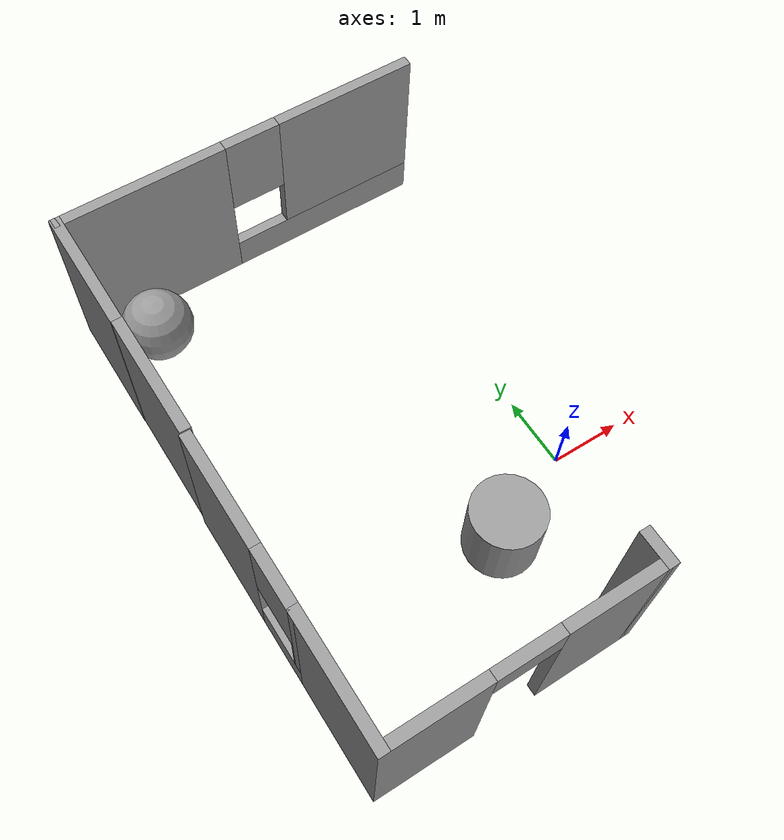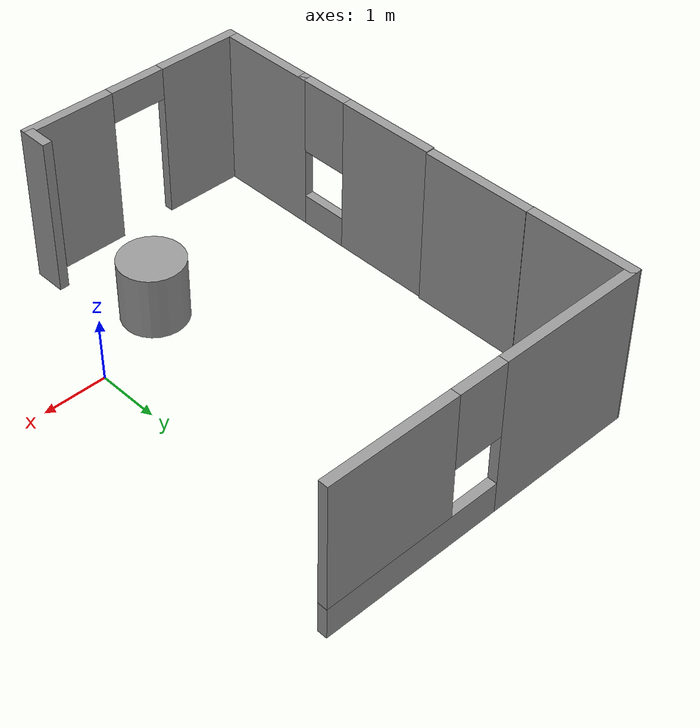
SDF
<sdf version="1.7">
 <model name="housing">
  <link name="Wall_28">
   <pose>-4.35 0.469647 0 0 0 -1.5708</pose>
   <visual name="Wall_28_Visual_0">
    <pose>-0.459531 0 1.25 0 -0 0</pose>
    <geometry><box><size>1.58094 0.15 2.5</size></box></geometry>
    <material>
     <script><uri>file://media/materials/scripts/gazebo.material</uri><name>Gazebo/Grey</name></script>
     <ambient>1 1 1 1</ambient>
     <shader type="pixel"/>
    </material>
    <meta><layer>0</layer></meta>
   </visual>
   <visual name="Wall_28_Visual_1">
    <pose>0.790469 0 0.25 0 -0 0</pose>
    <geometry><box><size>0.919061 0.15 0.5</size></box></geometry>
    <material>
     <script><uri>file://media/materials/scripts/gazebo.material</uri><name>Gazebo/Grey</name></script>
     <ambient>1 1 1 1</ambient>
     <shader type="pixel"/>
    </material>
    <meta><layer>0</layer></meta>
   </visual>
   <visual name="Wall_28_Visual_2">
    <pose>1.19047 0 1.5 0 -0 0</pose>
    <geometry><box><size>0.119061 0.15 2</size></box></geometry>
    <material>
     <script><uri>file://media/materials/scripts/gazebo.material</uri><name>Gazebo/Grey</name></script>
     <ambient>1 1 1 1</ambient>
     <shader type="pixel"/>
    </material>
    <meta><layer>0</layer></meta>
   </visual>
   <visual name="Wall_28_Visual_3">
    <pose>0.730939 0 1.9 0 -0 0</pose>
    <geometry><box><size>0.8 0.15 1.2</size></box></geometry>
    <material>
     <script><uri>file://media/materials/scripts/gazebo.material</uri><name>Gazebo/Grey</name></script>
     <ambient>1 1 1 1</ambient>
     <shader type="pixel"/>
    </material>
    <meta><layer>0</layer></meta>
   </visual>
   <collision name="Wall_28_Collision_0">
    <pose>-0.459531 0 1.25 0 -0 0</pose>
    <geometry><box><size>1.58094 0.15 2.5</size></box></geometry>
    <surface>
     <friction>
      <ode><mu>1</mu><mu2>1</mu2><fdir1>0 0 0</fdir1><slip1>0</slip1><slip2>0</slip2></ode>
      <torsional>
       <coefficient>1</coefficient>
       <patch_radius>0</patch_radius>
       <surface_radius>0</surface_radius>
       <use_patch_radius>1</use_patch_radius>
       <ode><slip>0</slip></ode>
      </torsional>
     </friction>
     <bounce><restitution_coefficient>0</restitution_coefficient><threshold>1e+06</threshold></bounce>
     <contact>
      <collide_without_contact>0</collide_without_contact>
      <collide_without_contact_bitmask>1</collide_without_contact_bitmask>
      <collide_bitmask>1</collide_bitmask>
      <ode>
       <soft_cfm>0</soft_cfm>
       <soft_erp>0.2</soft_erp>
       <kp>1e+13</kp>
       <kd>1</kd>
       <max_vel>0.01</max_vel>
       <min_depth>0</min_depth>
      </ode>
      <bullet>
       <split_impulse>1</split_impulse>
       <split_impulse_penetration_threshold>-0.01</split_impulse_penetration_threshold>
       <soft_cfm>0</soft_cfm>
       <soft_erp>0.2</soft_erp>
       <kp>1e+13</kp>
       <kd>1</kd>
      </bullet>
     </contact>
    </surface>
   </collision>
   <collision name="Wall_28_Collision_1">
    <pose>0.790469 0 0.25 0 -0 0</pose>
    <geometry><box><size>0.919061 0.15 0.5</size></box></geometry>
    <surface>
     <friction>
      <ode><mu>1</mu><mu2>1</mu2><fdir1>0 0 0</fdir1><slip1>0</slip1><slip2>0</slip2></ode>
      <torsional>
       <coefficient>1</coefficient>
       <patch_radius>0</patch_radius>
       <surface_radius>0</surface_radius>
       <use_patch_radius>1</use_patch_radius>
       <ode><slip>0</slip></ode>
      </torsional>
     </friction>
     <bounce><restitution_coefficient>0</restitution_coefficient><threshold>1e+06</threshold></bounce>
     <contact>
      <collide_without_contact>0</collide_without_contact>
      <collide_without_contact_bitmask>1</collide_without_contact_bitmask>
      <collide_bitmask>1</collide_bitmask>
      <ode>
       <soft_cfm>0</soft_cfm>
       <soft_erp>0.2</soft_erp>
       <kp>1e+13</kp>
       <kd>1</kd>
       <max_vel>0.01</max_vel>
       <min_depth>0</min_depth>
      </ode>
      <bullet>
       <split_impulse>1</split_impulse>
       <split_impulse_penetration_threshold>-0.01</split_impulse_penetration_threshold>
       <soft_cfm>0</soft_cfm>
       <soft_erp>0.2</soft_erp>
       <kp>1e+13</kp>
       <kd>1</kd>
      </bullet>
     </contact>
    </surface>
   </collision>
   <collision name="Wall_28_Collision_2">
    <pose>1.19047 0 1.5 0 -0 0</pose>
    <geometry><box><size>0.119061 0.15 2</size></box></geometry>
    <surface>
     <friction>
      <ode><mu>1</mu><mu2>1</mu2><fdir1>0 0 0</fdir1><slip1>0</slip1><slip2>0</slip2></ode>
      <torsional>
       <coefficient>1</coefficient>
       <patch_radius>0</patch_radius>
       <surface_radius>0</surface_radius>
       <use_patch_radius>1</use_patch_radius>
       <ode><slip>0</slip></ode>
      </torsional>
     </friction>
     <bounce><restitution_coefficient>0</restitution_coefficient><threshold>1e+06</threshold></bounce>
     <contact>
      <collide_without_contact>0</collide_without_contact>
      <collide_without_contact_bitmask>1</collide_without_contact_bitmask>
      <collide_bitmask>1</collide_bitmask>
      <ode>
       <soft_cfm>0</soft_cfm>
       <soft_erp>0.2</soft_erp>
       <kp>1e+13</kp>
       <kd>1</kd>
       <max_vel>0.01</max_vel>
       <min_depth>0</min_depth>
      </ode>
      <bullet>
       <split_impulse>1</split_impulse>
       <split_impulse_penetration_threshold>-0.01</split_impulse_penetration_threshold>
       <soft_cfm>0</soft_cfm>
       <soft_erp>0.2</soft_erp>
       <kp>1e+13</kp>
       <kd>1</kd>
      </bullet>
     </contact>
    </surface>
   </collision>
   <collision name="Wall_28_Collision_3">
    <pose>0.730939 0 1.9 0 -0 0</pose>
    <geometry><box><size>0.8 0.15 1.2</size></box></geometry>
    <surface>
     <friction>
      <ode><mu>1</mu><mu2>1</mu2><fdir1>0 0 0</fdir1><slip1>0</slip1><slip2>0</slip2></ode>
      <torsional>
       <coefficient>1</coefficient>
       <patch_radius>0</patch_radius>
       <surface_radius>0</surface_radius>
       <use_patch_radius>1</use_patch_radius>
       <ode><slip>0</slip></ode>
      </torsional>
     </friction>
     <bounce><restitution_coefficient>0</restitution_coefficient><threshold>1e+06</threshold></bounce>
     <contact>
      <collide_without_contact>0</collide_without_contact>
      <collide_without_contact_bitmask>1</collide_without_contact_bitmask>
      <collide_bitmask>1</collide_bitmask>
      <ode>
       <soft_cfm>0</soft_cfm>
       <soft_erp>0.2</soft_erp>
       <kp>1e+13</kp>
       <kd>1</kd>
       <max_vel>0.01</max_vel>
       <min_depth>0</min_depth>
      </ode>
      <bullet>
       <split_impulse>1</split_impulse>
       <split_impulse_penetration_threshold>-0.01</split_impulse_penetration_threshold>
       <soft_cfm>0</soft_cfm>
       <soft_erp>0.2</soft_erp>
       <kp>1e+13</kp>
       <kd>1</kd>
      </bullet>
     </contact>
    </surface>
   </collision>
  </link>
  <link name="Wall_51">
   <pose>-4.35 -1.50535 0 0 0 -1.5708</pose>
   <visual name="Wall_51_Visual">
    <pose>0 0 1.25 0 -0 0</pose>
    <geometry><box><size>1.75 0.15 2.5</size></box></geometry>
    <material>
     <script><uri>file://media/materials/scripts/gazebo.material</uri><name>Gazebo/Grey</name></script>
     <ambient>1 1 1 1</ambient>
     <shader type="pixel"/>
    </material>
    <meta><layer>0</layer></meta>
   </visual>
   <collision name="Wall_51_Collision">
    <pose>0 0 1.25 0 -0 0</pose>
    <geometry><box><size>1.75 0.15 2.5</size></box></geometry>
    <surface>
     <friction>
      <ode><mu>1</mu><mu2>1</mu2><fdir1>0 0 0</fdir1><slip1>0</slip1><slip2>0</slip2></ode>
      <torsional>
       <coefficient>1</coefficient>
       <patch_radius>0</patch_radius>
       <surface_radius>0</surface_radius>
       <use_patch_radius>1</use_patch_radius>
       <ode><slip>0</slip></ode>
      </torsional>
     </friction>
     <bounce><restitution_coefficient>0</restitution_coefficient><threshold>1e+06</threshold></bounce>
     <contact>
      <collide_without_contact>0</collide_without_contact>
      <collide_without_contact_bitmask>1</collide_without_contact_bitmask>
      <collide_bitmask>1</collide_bitmask>
      <ode>
       <soft_cfm>0</soft_cfm>
       <soft_erp>0.2</soft_erp>
       <kp>1e+13</kp>
       <kd>1</kd>
       <max_vel>0.01</max_vel>
       <min_depth>0</min_depth>
      </ode>
      <bullet>
       <split_impulse>1</split_impulse>
       <split_impulse_penetration_threshold>-0.01</split_impulse_penetration_threshold>
       <soft_cfm>0</soft_cfm>
       <soft_erp>0.2</soft_erp>
       <kp>1e+13</kp>
       <kd>1</kd>
      </bullet>
     </contact>
    </surface>
   </collision>
  </link>
  <link name="Wall_51_clone">
   <pose>-4.32868 2.60917 0 0 0 -1.5708</pose>
   <visual name="Wall_51_Visual">
    <pose>0 0 1.25 0 -0 0</pose>
    <geometry><box><size>1.75 0.15 2.5</size></box></geometry>
    <material>
     <script><uri>file://media/materials/scripts/gazebo.material</uri><name>Gazebo/Grey</name></script>
     <ambient>1 1 1 1</ambient>
     <shader type="pixel"/>
    </material>
    <meta><layer>0</layer></meta>
   </visual>
   <collision name="Wall_51_Collision">
    <pose>0 0 1.25 0 -0 0</pose>
    <geometry><box><size>1.75 0.15 2.5</size></box></geometry>
    <surface>
     <friction>
      <ode><mu>1</mu><mu2>1</mu2><fdir1>0 0 0</fdir1><slip1>0</slip1><slip2>0</slip2></ode>
      <torsional>
       <coefficient>1</coefficient>
       <patch_radius>0</patch_radius>
       <surface_radius>0</surface_radius>
       <use_patch_radius>1</use_patch_radius>
       <ode><slip>0</slip></ode>
      </torsional>
     </friction>
     <bounce><restitution_coefficient>0</restitution_coefficient><threshold>1e+06</threshold></bounce>
     <contact>
      <collide_without_contact>0</collide_without_contact>
      <collide_without_contact_bitmask>1</collide_without_contact_bitmask>
      <collide_bitmask>1</collide_bitmask>
      <ode>
       <soft_cfm>0</soft_cfm>
       <soft_erp>0.2</soft_erp>
       <kp>1e+13</kp>
       <kd>1</kd>
       <max_vel>0.01</max_vel>
       <min_depth>0</min_depth>
      </ode>
      <bullet>
       <split_impulse>1</split_impulse>
       <split_impulse_penetration_threshold>-0.01</split_impulse_penetration_threshold>
       <soft_cfm>0</soft_cfm>
       <soft_erp>0.2</soft_erp>
       <kp>1e+13</kp>
       <kd>1</kd>
      </bullet>
     </contact>
    </surface>
   </collision>
  </link>
  <link name="Wall_51_clone_clone">
   <pose>-4.33427 4.33509 0 0 0 -1.5708</pose>
   <visual name="Wall_51_Visual">
    <pose>0 0 1.25 0 -0 0</pose>
    <geometry><box><size>1.75 0.15 2.5</size></box></geometry>
    <material>
     <script><uri>file://media/materials/scripts/gazebo.material</uri><name>Gazebo/Grey</name></script>
     <ambient>1 1 1 1</ambient>
     <shader type="pixel"/>
    </material>
    <meta><layer>0</layer></meta>
   </visual>
   <collision name="Wall_51_Collision">
    <pose>0 0 1.25 0 -0 0</pose>
    <geometry><box><size>1.75 0.15 2.5</size></box></geometry>
    <surface>
     <friction>
      <ode><mu>1</mu><mu2>1</mu2><fdir1>0 0 0</fdir1><slip1>0</slip1><slip2>0</slip2></ode>
      <torsional>
       <coefficient>1</coefficient>
       <patch_radius>0</patch_radius>
       <surface_radius>0</surface_radius>
       <use_patch_radius>1</use_patch_radius>
       <ode><slip>0</slip></ode>
      </torsional>
     </friction>
     <bounce><restitution_coefficient>0</restitution_coefficient><threshold>1e+06</threshold></bounce>
     <contact>
      <collide_without_contact>0</collide_without_contact>
      <collide_without_contact_bitmask>1</collide_without_contact_bitmask>
      <collide_bitmask>1</collide_bitmask>
      <ode>
       <soft_cfm>0</soft_cfm>
       <soft_erp>0.2</soft_erp>
       <kp>1e+13</kp>
       <kd>1</kd>
       <max_vel>0.01</max_vel>
       <min_depth>0</min_depth>
      </ode>
      <bullet>
       <split_impulse>1</split_impulse>
       <split_impulse_penetration_threshold>-0.01</split_impulse_penetration_threshold>
       <soft_cfm>0</soft_cfm>
       <soft_erp>0.2</soft_erp>
       <kp>1e+13</kp>
       <kd>1</kd>
      </bullet>
     </contact>
    </surface>
   </collision>
  </link>
  <link name="Wall_52">
   <pose>-2.55 -2.30535 0 0 -0 0</pose>
   <visual name="Wall_52_Visual_0">
    <pose>-1.17213 0 1.25 0 -0 0</pose>
    <geometry><box><size>1.40574 0.15 2.5</size></box></geometry>
    <material>
     <script><uri>file://media/materials/scripts/gazebo.material</uri><name>Gazebo/Grey</name></script>
     <ambient>1 1 1 1</ambient>
     <shader type="pixel"/>
    </material>
    <meta><layer>0</layer></meta>
   </visual>
   <visual name="Wall_52_Visual_1">
    <pose>1.15287 0 1.25 0 -0 0</pose>
    <geometry><box><size>1.44426 0.15 2.5</size></box></geometry>
    <material>
     <script><uri>file://media/materials/scripts/gazebo.material</uri><name>Gazebo/Grey</name></script>
     <ambient>1 1 1 1</ambient>
     <shader type="pixel"/>
    </material>
    <meta><layer>0</layer></meta>
   </visual>
   <visual name="Wall_52_Visual_2">
    <pose>-0.019263 0 2.25 0 -0 0</pose>
    <geometry><box><size>0.9 0.15 0.5</size></box></geometry>
    <material>
     <script><uri>file://media/materials/scripts/gazebo.material</uri><name>Gazebo/Grey</name></script>
     <ambient>1 1 1 1</ambient>
     <shader type="pixel"/>
    </material>
    <meta><layer>0</layer></meta>
   </visual>
   <collision name="Wall_52_Collision_0">
    <pose>-1.17213 0 1.25 0 -0 0</pose>
    <geometry><box><size>1.40574 0.15 2.5</size></box></geometry>
    <surface>
     <friction>
      <ode><mu>1</mu><mu2>1</mu2><fdir1>0 0 0</fdir1><slip1>0</slip1><slip2>0</slip2></ode>
      <torsional>
       <coefficient>1</coefficient>
       <patch_radius>0</patch_radius>
       <surface_radius>0</surface_radius>
       <use_patch_radius>1</use_patch_radius>
       <ode><slip>0</slip></ode>
      </torsional>
     </friction>
     <bounce><restitution_coefficient>0</restitution_coefficient><threshold>1e+06</threshold></bounce>
     <contact>
      <collide_without_contact>0</collide_without_contact>
      <collide_without_contact_bitmask>1</collide_without_contact_bitmask>
      <collide_bitmask>1</collide_bitmask>
      <ode>
       <soft_cfm>0</soft_cfm>
       <soft_erp>0.2</soft_erp>
       <kp>1e+13</kp>
       <kd>1</kd>
       <max_vel>0.01</max_vel>
       <min_depth>0</min_depth>
      </ode>
      <bullet>
       <split_impulse>1</split_impulse>
       <split_impulse_penetration_threshold>-0.01</split_impulse_penetration_threshold>
       <soft_cfm>0</soft_cfm>
       <soft_erp>0.2</soft_erp>
       <kp>1e+13</kp>
       <kd>1</kd>
      </bullet>
     </contact>
    </surface>
   </collision>
   <collision name="Wall_52_Collision_2">
    <pose>-0.019263 0 2.25 0 -0 0</pose>
    <geometry><box><size>0.9 0.15 0.5</size></box></geometry>
    <surface>
     <friction>
      <ode><mu>1</mu><mu2>1</mu2><fdir1>0 0 0</fdir1><slip1>0</slip1><slip2>0</slip2></ode>
      <torsional>
       <coefficient>1</coefficient>
       <patch_radius>0</patch_radius>
       <surface_radius>0</surface_radius>
       <use_patch_radius>1</use_patch_radius>
       <ode><slip>0</slip></ode>
      </torsional>
     </friction>
     <bounce><restitution_coefficient>0</restitution_coefficient><threshold>1e+06</threshold></bounce>
     <contact>
      <collide_without_contact>0</collide_without_contact>
      <collide_without_contact_bitmask>1</collide_without_contact_bitmask>
      <collide_bitmask>1</collide_bitmask>
      <ode>
       <soft_cfm>0</soft_cfm>
       <soft_erp>0.2</soft_erp>
       <kp>1e+13</kp>
       <kd>1</kd>
       <max_vel>0.01</max_vel>
       <min_depth>0</min_depth>
      </ode>
      <bullet>
       <split_impulse>1</split_impulse>
       <split_impulse_penetration_threshold>-0.01</split_impulse_penetration_threshold>
       <soft_cfm>0</soft_cfm>
       <soft_erp>0.2</soft_erp>
       <kp>1e+13</kp>
       <kd>1</kd>
      </bullet>
     </contact>
    </surface>
   </collision>
   <collision name="Wall_52_Collision_1">
    <pose>1.15287 0 1.25 0 -0 0</pose>
    <geometry><box><size>1.44426 0.15 2.5</size></box></geometry>
    <surface>
     <friction>
      <ode><mu>1</mu><mu2>1</mu2><fdir1>0 0 0</fdir1><slip1>0</slip1><slip2>0</slip2></ode>
      <torsional>
       <coefficient>1</coefficient>
       <patch_radius>0</patch_radius>
       <surface_radius>0</surface_radius>
       <use_patch_radius>1</use_patch_radius>
       <ode><slip>0</slip></ode>
      </torsional>
     </friction>
     <bounce><restitution_coefficient>0</restitution_coefficient><threshold>1e+06</threshold></bounce>
     <contact>
      <collide_without_contact>0</collide_without_contact>
      <collide_without_contact_bitmask>1</collide_without_contact_bitmask>
      <collide_bitmask>1</collide_bitmask>
      <ode>
       <soft_cfm>0</soft_cfm>
       <soft_erp>0.2</soft_erp>
       <kp>1e+13</kp>
       <kd>1</kd>
       <max_vel>0.01</max_vel>
       <min_depth>0</min_depth>
      </ode>
      <bullet>
       <split_impulse>1</split_impulse>
       <split_impulse_penetration_threshold>-0.01</split_impulse_penetration_threshold>
       <soft_cfm>0</soft_cfm>
       <soft_erp>0.2</soft_erp>
       <kp>1e+13</kp>
       <kd>1</kd>
      </bullet>
     </contact>
    </surface>
   </collision>
  </link>
  <link name="Wall_53">
   <pose>-0.75 -2.13035 0 0 -0 1.5708</pose>
   <visual name="Wall_53_Visual">
    <pose>0 0 1.25 0 -0 0</pose>
    <geometry><box><size>0.5 0.15 2.5</size></box></geometry>
    <material>
     <script><uri>file://media/materials/scripts/gazebo.material</uri><name>Gazebo/Grey</name></script>
     <ambient>1 1 1 1</ambient>
     <shader type="pixel"/>
    </material>
    <meta><layer>0</layer></meta>
   </visual>
   <collision name="Wall_53_Collision">
    <pose>0 0 1.25 0 -0 0</pose>
    <geometry><box><size>0.5 0.15 2.5</size></box></geometry>
    <surface>
     <friction>
      <ode><mu>1</mu><mu2>1</mu2><fdir1>0 0 0</fdir1><slip1>0</slip1><slip2>0</slip2></ode>
      <torsional>
       <coefficient>1</coefficient>
       <patch_radius>0</patch_radius>
       <surface_radius>0</surface_radius>
       <use_patch_radius>1</use_patch_radius>
       <ode><slip>0</slip></ode>
      </torsional>
     </friction>
     <bounce><restitution_coefficient>0</restitution_coefficient><threshold>1e+06</threshold></bounce>
     <contact>
      <collide_without_contact>0</collide_without_contact>
      <collide_without_contact_bitmask>1</collide_without_contact_bitmask>
      <collide_bitmask>1</collide_bitmask>
      <ode>
       <soft_cfm>0</soft_cfm>
       <soft_erp>0.2</soft_erp>
       <kp>1e+13</kp>
       <kd>1</kd>
       <max_vel>0.01</max_vel>
       <min_depth>0</min_depth>
      </ode>
      <bullet>
       <split_impulse>1</split_impulse>
       <split_impulse_penetration_threshold>-0.01</split_impulse_penetration_threshold>
       <soft_cfm>0</soft_cfm>
       <soft_erp>0.2</soft_erp>
       <kp>1e+13</kp>
       <kd>1</kd>
      </bullet>
     </contact>
    </surface>
   </collision>
  </link>
  <link name="Wall_54_clone">
   <pose>-1.75776 5.13683 0 0 -0 0</pose>
   <visual name="Wall_54_Visual_2">
    <pose>1.59787 0 1.5 0 -0 0</pose>
    <geometry><box><size>2.05426 0.15 2</size></box></geometry>
    <material>
     <script><uri>file://media/materials/scripts/gazebo.material</uri><name>Gazebo/Grey</name></script>
     <ambient>1 1 1 1</ambient>
     <shader type="pixel"/>
    </material>
    <meta><layer>0</layer></meta>
   </visual>
   <visual name="Wall_54_Visual_1">
    <pose>1.19787 0 0.25 0 -0 0</pose>
    <geometry><box><size>2.85426 0.15 0.5</size></box></geometry>
    <material>
     <script><uri>file://media/materials/scripts/gazebo.material</uri><name>Gazebo/Grey</name></script>
     <ambient>1 1 1 1</ambient>
     <shader type="pixel"/>
    </material>
    <meta><layer>0</layer></meta>
   </visual>
   <visual name="Wall_54_Visual_0">
    <pose>-1.42713 0 1.25 0 -0 0</pose>
    <geometry><box><size>2.39574 0.15 2.5</size></box></geometry>
    <material>
     <script><uri>file://media/materials/scripts/gazebo.material</uri><name>Gazebo/Grey</name></script>
     <ambient>1 1 1 1</ambient>
     <shader type="pixel"/>
    </material>
    <meta><layer>0</layer></meta>
   </visual>
   <visual name="Wall_54_Visual_3">
    <pose>0.170737 0 1.9 0 -0 0</pose>
    <geometry><box><size>0.8 0.15 1.2</size></box></geometry>
    <material>
     <script><uri>file://media/materials/scripts/gazebo.material</uri><name>Gazebo/Grey</name></script>
     <ambient>1 1 1 1</ambient>
     <shader type="pixel"/>
    </material>
    <meta><layer>0</layer></meta>
   </visual>
   <collision name="Wall_54_Collision_2">
    <pose>1.59787 0 1.5 0 -0 0</pose>
    <geometry><box><size>2.05426 0.15 2</size></box></geometry>
    <surface>
     <friction>
      <ode><mu>1</mu><mu2>1</mu2><fdir1>0 0 0</fdir1><slip1>0</slip1><slip2>0</slip2></ode>
      <torsional>
       <coefficient>1</coefficient>
       <patch_radius>0</patch_radius>
       <surface_radius>0</surface_radius>
       <use_patch_radius>1</use_patch_radius>
       <ode><slip>0</slip></ode>
      </torsional>
     </friction>
     <bounce><restitution_coefficient>0</restitution_coefficient><threshold>1e+06</threshold></bounce>
     <contact>
      <collide_without_contact>0</collide_without_contact>
      <collide_without_contact_bitmask>1</collide_without_contact_bitmask>
      <collide_bitmask>1</collide_bitmask>
      <ode>
       <soft_cfm>0</soft_cfm>
       <soft_erp>0.2</soft_erp>
       <kp>1e+13</kp>
       <kd>1</kd>
       <max_vel>0.01</max_vel>
       <min_depth>0</min_depth>
      </ode>
      <bullet>
       <split_impulse>1</split_impulse>
       <split_impulse_penetration_threshold>-0.01</split_impulse_penetration_threshold>
       <soft_cfm>0</soft_cfm>
       <soft_erp>0.2</soft_erp>
       <kp>1e+13</kp>
       <kd>1</kd>
      </bullet>
     </contact>
    </surface>
   </collision>
   <collision name="Wall_54_Collision_3">
    <pose>0.170737 0 1.9 0 -0 0</pose>
    <geometry><box><size>0.8 0.15 1.2</size></box></geometry>
    <surface>
     <friction>
      <ode><mu>1</mu><mu2>1</mu2><fdir1>0 0 0</fdir1><slip1>0</slip1><slip2>0</slip2></ode>
      <torsional>
       <coefficient>1</coefficient>
       <patch_radius>0</patch_radius>
       <surface_radius>0</surface_radius>
       <use_patch_radius>1</use_patch_radius>
       <ode><slip>0</slip></ode>
      </torsional>
     </friction>
     <bounce><restitution_coefficient>0</restitution_coefficient><threshold>1e+06</threshold></bounce>
     <contact>
      <collide_without_contact>0</collide_without_contact>
      <collide_without_contact_bitmask>1</collide_without_contact_bitmask>
      <collide_bitmask>1</collide_bitmask>
      <ode>
       <soft_cfm>0</soft_cfm>
       <soft_erp>0.2</soft_erp>
       <kp>1e+13</kp>
       <kd>1</kd>
       <max_vel>0.01</max_vel>
       <min_depth>0</min_depth>
      </ode>
      <bullet>
       <split_impulse>1</split_impulse>
       <split_impulse_penetration_threshold>-0.01</split_impulse_penetration_threshold>
       <soft_cfm>0</soft_cfm>
       <soft_erp>0.2</soft_erp>
       <kp>1e+13</kp>
       <kd>1</kd>
      </bullet>
     </contact>
    </surface>
   </collision>
   <collision name="Wall_54_Collision_1">
    <pose>1.19787 0 0.25 0 -0 0</pose>
    <geometry><box><size>2.85426 0.15 0.5</size></box></geometry>
    <surface>
     <friction>
      <ode><mu>1</mu><mu2>1</mu2><fdir1>0 0 0</fdir1><slip1>0</slip1><slip2>0</slip2></ode>
      <torsional>
       <coefficient>1</coefficient>
       <patch_radius>0</patch_radius>
       <surface_radius>0</surface_radius>
       <use_patch_radius>1</use_patch_radius>
       <ode><slip>0</slip></ode>
      </torsional>
     </friction>
     <bounce><restitution_coefficient>0</restitution_coefficient><threshold>1e+06</threshold></bounce>
     <contact>
      <collide_without_contact>0</collide_without_contact>
      <collide_without_contact_bitmask>1</collide_without_contact_bitmask>
      <collide_bitmask>1</collide_bitmask>
      <ode>
       <soft_cfm>0</soft_cfm>
       <soft_erp>0.2</soft_erp>
       <kp>1e+13</kp>
       <kd>1</kd>
       <max_vel>0.01</max_vel>
       <min_depth>0</min_depth>
      </ode>
      <bullet>
       <split_impulse>1</split_impulse>
       <split_impulse_penetration_threshold>-0.01</split_impulse_penetration_threshold>
       <soft_cfm>0</soft_cfm>
       <soft_erp>0.2</soft_erp>
       <kp>1e+13</kp>
       <kd>1</kd>
      </bullet>
     </contact>
    </surface>
   </collision>
   <collision name="Wall_54_Collision_0">
    <pose>-1.42713 0 1.25 0 -0 0</pose>
    <geometry><box><size>2.39574 0.15 2.5</size></box></geometry>
    <surface>
     <friction>
      <ode><mu>1</mu><mu2>1</mu2><fdir1>0 0 0</fdir1><slip1>0</slip1><slip2>0</slip2></ode>
      <torsional>
       <coefficient>1</coefficient>
       <patch_radius>0</patch_radius>
       <surface_radius>0</surface_radius>
       <use_patch_radius>1</use_patch_radius>
       <ode><slip>0</slip></ode>
      </torsional>
     </friction>
     <bounce><restitution_coefficient>0</restitution_coefficient><threshold>1e+06</threshold></bounce>
     <contact>
      <collide_without_contact>0</collide_without_contact>
      <collide_without_contact_bitmask>1</collide_without_contact_bitmask>
      <collide_bitmask>1</collide_bitmask>
      <ode>
       <soft_cfm>0</soft_cfm>
       <soft_erp>0.2</soft_erp>
       <kp>1e+13</kp>
       <kd>1</kd>
       <max_vel>0.01</max_vel>
       <min_depth>0</min_depth>
      </ode>
      <bullet>
       <split_impulse>1</split_impulse>
       <split_impulse_penetration_threshold>-0.01</split_impulse_penetration_threshold>
       <soft_cfm>0</soft_cfm>
       <soft_erp>0.2</soft_erp>
       <kp>1e+13</kp>
       <kd>1</kd>
      </bullet>
     </contact>
    </surface>
   </collision>
  </link>
  <link name="link_1">
   <inertial>
    <mass>1</mass>
    <inertia><ixx>0.1</ixx><ixy>0</ixy><ixz>0</ixz><iyy>0.1</iyy><iyz>0</iyz><izz>0.1</izz></inertia>
   </inertial>
   <pose>-3.61962 4.44583 0.5 0 -0 0</pose>
   <visual name="visual">
    <geometry><sphere><radius>0.5</radius></sphere></geometry>
    <material>
     <lighting>1</lighting>
     <script><uri>file://media/materials/scripts/gazebo.material</uri><name>Gazebo/Grey</name></script>
     <shader type="pixel"/>
    </material>
   </visual>
   <collision name="collision">
    <geometry><sphere><radius>0.5</radius></sphere></geometry>
    <surface>
     <friction>
      <ode><mu>1</mu><mu2>1</mu2><fdir1>0 0 0</fdir1><slip1>0</slip1><slip2>0</slip2></ode>
      <torsional>
       <coefficient>1</coefficient>
       <patch_radius>0</patch_radius>
       <surface_radius>0</surface_radius>
       <use_patch_radius>1</use_patch_radius>
       <ode><slip>0</slip></ode>
      </torsional>
     </friction>
     <bounce><restitution_coefficient>0</restitution_coefficient><threshold>1e+06</threshold></bounce>
     <contact>
      <collide_without_contact>0</collide_without_contact>
      <collide_without_contact_bitmask>1</collide_without_contact_bitmask>
      <collide_bitmask>1</collide_bitmask>
      <ode>
       <soft_cfm>0</soft_cfm>
       <soft_erp>0.2</soft_erp>
       <kp>1e+13</kp>
       <kd>1</kd>
       <max_vel>0.01</max_vel>
       <min_depth>0</min_depth>
      </ode>
      <bullet>
       <split_impulse>1</split_impulse>
       <split_impulse_penetration_threshold>-0.01</split_impulse_penetration_threshold>
       <soft_cfm>0</soft_cfm>
       <soft_erp>0.2</soft_erp>
       <kp>1e+13</kp>
       <kd>1</kd>
      </bullet>
     </contact>
    </surface>
   </collision>
  </link>
  <link name="link_3">
   <inertial>
    <mass>1</mass>
    <inertia><ixx>0.145833</ixx><ixy>0</ixy><ixz>0</ixz><iyy>0.145833</iyy><iyz>0</iyz><izz>0.125</izz></inertia>
   </inertial>
   <pose>-1.31965 -0.542896 0.5 0 -0 0</pose>
   <visual name="visual">
    <geometry><cylinder><radius>0.5</radius><length>1</length></cylinder></geometry>
    <material>
     <lighting>1</lighting>
     <script><uri>file://media/materials/scripts/gazebo.material</uri><name>Gazebo/Grey</name></script>
     <shader type="pixel"/>
    </material>
   </visual>
   <collision name="collision">
    <geometry><cylinder><radius>0.5</radius><length>1</length></cylinder></geometry>
    <surface>
     <friction>
      <ode><mu>1</mu><mu2>1</mu2><fdir1>0 0 0</fdir1><slip1>0</slip1><slip2>0</slip2></ode>
      <torsional>
       <coefficient>1</coefficient>
       <patch_radius>0</patch_radius>
       <surface_radius>0</surface_radius>
       <use_patch_radius>1</use_patch_radius>
       <ode><slip>0</slip></ode>
      </torsional>
     </friction>
     <bounce><restitution_coefficient>0</restitution_coefficient><threshold>1e+06</threshold></bounce>
     <contact>
      <collide_without_contact>0</collide_without_contact>
      <collide_without_contact_bitmask>1</collide_without_contact_bitmask>
      <collide_bitmask>1</collide_bitmask>
      <ode>
       <soft_cfm>0</soft_cfm>
       <soft_erp>0.2</soft_erp>
       <kp>1e+13</kp>
       <kd>1</kd>
       <max_vel>0.01</max_vel>
       <min_depth>0</min_depth>
      </ode>
      <bullet>
       <split_impulse>1</split_impulse>
       <split_impulse_penetration_threshold>-0.01</split_impulse_penetration_threshold>
       <soft_cfm>0</soft_cfm>
       <soft_erp>0.2</soft_erp>
       <kp>1e+13</kp>
       <kd>1</kd>
      </bullet>
     </contact>
    </surface>
   </collision>
  </link>
  <static>1</static>
 </model>
</sdf>
